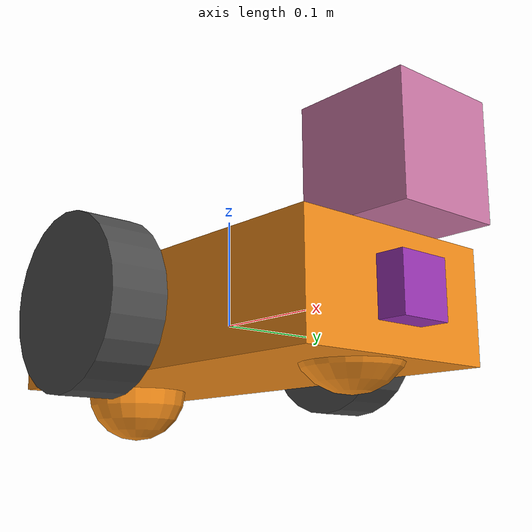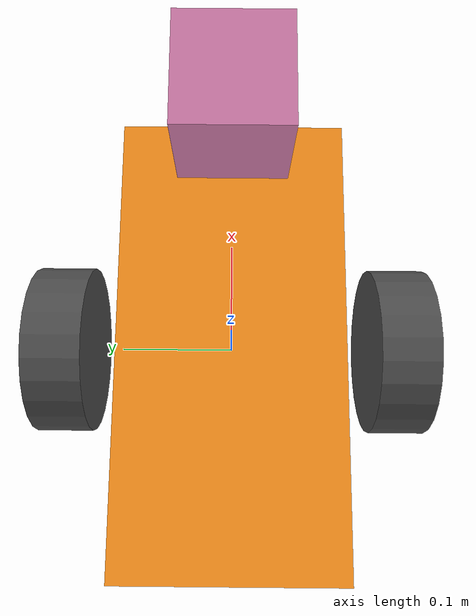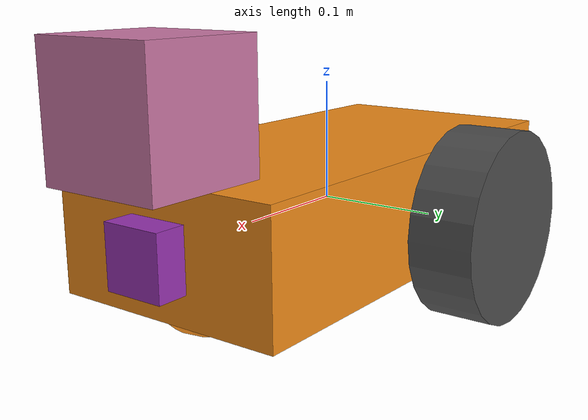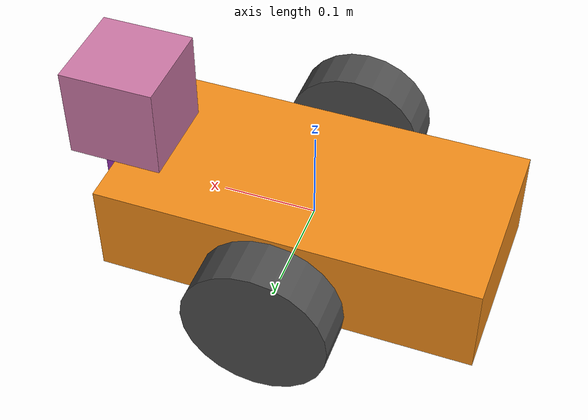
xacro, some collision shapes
<?xml version='1.0'?>

<robot name="my_robot" xmlns:xacro="http://www.ros.org/wiki/xacro">
<gazebo reference = "left_wheel">
  <material>Gazebo/DarkGrey</material>
</gazebo>
<gazebo reference = "right_wheel">
  <material>Gazebo/DarkGrey</material>
</gazebo>
<gazebo reference = "chassis">
  <material>Gazebo/Orange</material>
</gazebo>
<gazebo reference = "camera">
  <material>Gazebo/Purple</material>
</gazebo>

<xacro:include filename="$(find my_robot)/urdf/my_robot.gazebo" />

  <link name="robot_footprint"></link>
  <joint name="robot_footprint_joint" type="fixed">
    <origin xyz="0 0 0" rpy="0 0 0" />
    <parent link="robot_footprint"/>
    <child link="chassis" />
  </joint>
  <link name='chassis'>
    <pose>0 0 0.1 0 0 0</pose>
    <inertial>
      <mass value="1.0"/>
      <origin xyz="0 0 0" rpy=" 0 0 0"/>
      <inertia
          ixx="0.1" ixy="0" ixz="0"
          iyy="0.1" iyz="0"
          izz="0.1"
      />
    </inertial>

    <collision name='collision'>
      <origin xyz="0 0 0" rpy=" 0 0 0"/>
      <geometry>
        <box size=".4 .2 .1"/>
      </geometry>
    </collision>
    <visual name='chassis_visual'>
      <origin xyz="0 0 0" rpy=" 0 0 0"/>
      <geometry>
        <box size=".4 .2 .1"/>
      </geometry>
    </visual>
   <collision name='back_caster_collision'>
      <origin xyz="-0.15 0 -0.025" rpy=" 0 0 0"/>
      <geometry>
        <sphere radius="0.0499"/>
      </geometry>
    </collision>
    <visual name='back_caster_visual'>
      <origin xyz="-0.15 0 -0.05" rpy=" 0 0 0"/>
      <geometry>
        <sphere radius="0.05"/>
      </geometry>
    </visual>
    <collision name='front_caster_collision'>
      <origin xyz="0.15 0 -0.025" rpy=" 0 0 0"/>
      <geometry>
        <sphere radius="0.0499"/>
      </geometry>
    </collision> -->
    <visual name='front_caster_visual'>
      <origin xyz="0.15 0 -0.025" rpy=" 0 0 0"/>
      <geometry>
        <sphere radius="0.05"/>
      </geometry>
    </visual>
  </link>
  <joint type="continuous" name="left_wheel_hinge">
    <origin xyz="0 0.15 0" rpy="0 0 0"/>
    <child link="left_wheel"/>
    <parent link="chassis"/>
    <axis xyz="0 1 0" rpy="0 0 0"/>
    <limit effort="10000" velocity="1000"/>
    <dynamics damping="1.0" friction="1.0"/>
  </joint>

  <link name = 'left_wheel'>
        <inertial>
      <mass value="5"/>
      <origin xyz = "0 0 0" rpy="0 1.5707 1.5707"/>
        <inertia
          ixx="0.1" ixy="0" ixz="0"
          iyy="0.1" iyz="0"
          izz="0.1"
        />
    </inertial>
    <collision>
        <origin xyz = "0 0 0" rpy="0 1.5707 1.5707"/>
        <geometry>
            <cylinder radius = "0.075" length = "0.05"/>
        </geometry>
    </collision>
    <visual>
        <origin xyz = "0 0 0" rpy="0 1.5707 1.5707"/>
        <geometry>
            <cylinder radius = "0.075" length = "0.05"/>
        </geometry>
    </visual>
  </link>
<joint type="continuous" name="right_wheel_hinge">
    <origin xyz="0 -0.15 0" rpy="0 0 0"/>
    <child link="right_wheel"/>
    <parent link="chassis"/>
    <axis xyz="0 1 0" rpy="0 0 0"/>
    <limit effort="10000" velocity="1000"/>
    <dynamics damping="1.0" friction="1.0"/>
  </joint>

  <link name = 'right_wheel'>
        <inertial>
      <mass value="5"/>
      <origin xyz = "0 0 0" rpy="0 1.5707 1.5707"/>
        <inertia
          ixx="0.1" ixy="0" ixz="0"
          iyy="0.1" iyz="0"
          izz="0.1"
        />
    </inertial>
    <collision>
        <origin xyz = "0 0 0" rpy="0 1.5707 1.5707"/>
        <geometry>
            <cylinder radius = "0.075" length = "0.05"/>
        </geometry>
    </collision>
    <visual>
        <origin xyz = "0 0 0" rpy="0 1.5707 1.5707"/>
        <geometry>
            <cylinder radius = "0.075" length = "0.05"/>
        </geometry>
    </visual>

  </link>
  <joint type="fixed" name="camera_joint">
    <origin xyz="0.2 0 0" rpy="0 0 0"/>
    <axis xyz="0 1 0"/>
    <child link="camera"/>
    <parent link="chassis"/>
  </joint>

  <link name ="camera">
    <origin xyz="0 0 0" rpy="0 0 0"/>
    <geometry>
      <box size="0.05 0.05 0.05"/>
    </geometry>
    <inertial>
      <mass value="0.1"/>
      <origin xyz="0 0 0" rpy="0 0 0"/>
      <inertia
        ixx="1e-6" ixy="0" ixz="0"
        iyy="1e-6" iyz="0"
        izz="1e-6"
        />
    </inertial>

    <collision>
      <origin xyz="0 0 0" rpy="0 0 0"/>
      <geometry>
        <box size="0.05 0.05 0.05"/>
      </geometry>
    </collision>

    <visual>
      <origin xyz="0 0 0" rpy="0 0 0"/>
      <geometry>
        <box size="0.05 0.05 0.05"/>
      </geometry>
    </visual>
  </link>

  <joint name="camera_optical_joint" type="fixed">
    <origin xyz="0 0 0" rpy="-1.5707 0 -1.5707"/>
    <parent link="camera"/>
    <child link="camera_link_optical"/>
  </joint>

  <link name="camera_link_optical">
  </link>

  <joint type="fixed" name="hokuyo_joint">
    <origin xyz="0.20 0 0.1" rpy="0 0 0"/>
    <axis xyz="0 1 0"/>
    <child link="base_link"/>
    <parent link="chassis"/>
  </joint>

<link name ="base_link">
    <origin xyz="0 0 0" rpy="0 0 0"/>
    <visual>
    <origin xyz="0 0 0" rpy="0 0 0"/>
      <geometry><mesh filename= "package://my_robot/meshes/hokuyo.dae"/></geometry>
    </visual>
    <collision>
      <origin xyz="0 0 0" rpy="0 0 0"/>
      <geometry>
        <box size="0.1 0.1 0.1"/>
      </geometry>
    </collision>
    <inertial>
      <mass value="1e-5"/>
      <inertia
        ixx="1e-6" ixy="0" ixz="0"
        iyy="1e-6" iyz="0"
        izz="1e-6"
        />
    </inertial>
  </link>
</robot>
